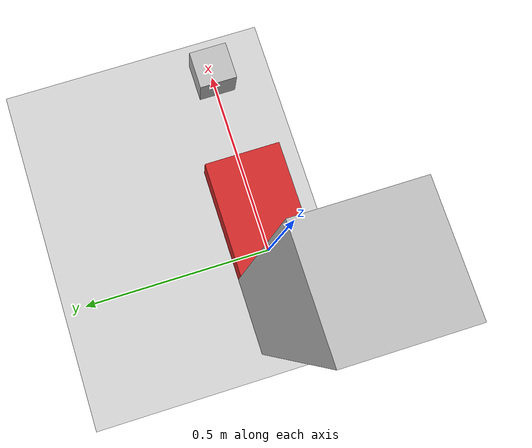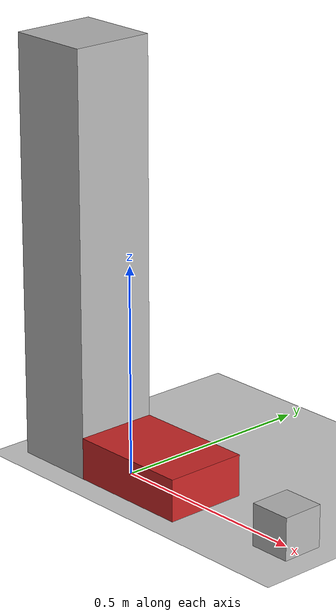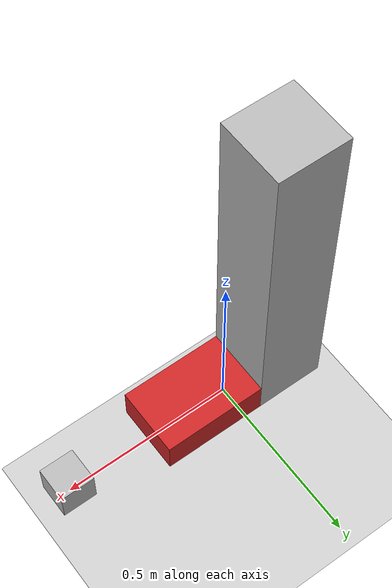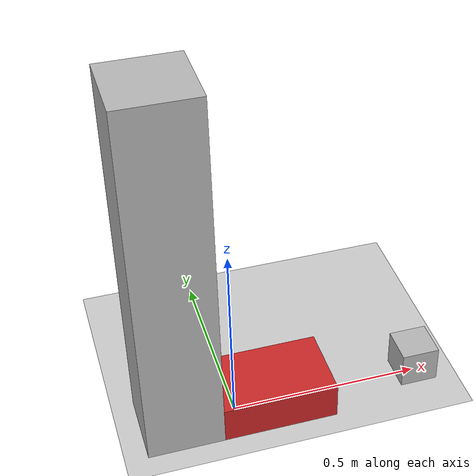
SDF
<?xml version="1.0"?>
<sdf version="1.4">
    <world name="default">

    <!-- Ground Plane -->
    <include>
      <uri>model://ground_plane</uri>
    </include>

    <include>
      <uri>model://sun</uri>
    </include>

    <model name="simple_gripper">
        <link name="riser">
            <pose>-0.15 0.0 0.5 0 0 0</pose>
            <inertial>
                <pose>0 0 -0.5 0 0 0</pose>
                <inertia>
                    <ixx>0.01</ixx>
                    <ixy>0</ixy>
                    <ixz>0</ixz>
                    <iyy>0.01</iyy>
                    <iyz>0</iyz>
                    <izz>0.01</izz>
                </inertia>
                <mass>50.0</mass>
            </inertial>
            <collision name="collision">
                <geometry>
                    <box>
                        <size>0.2 0.2 1.0</size>
                    </box>
                </geometry>
            </collision>
            <visual name="visual">
                <geometry>
                    <box>
                        <size>0.2 0.2 1.0</size>
                    </box>
                </geometry>
            </visual>
        </link>
        <link name="gripper_link">
            <pose>0.1 0.0 0.05 0 0 0</pose>
            <inertial>
                <inertia>
                    <ixx>0.01</ixx>
                    <ixy>0</ixy>
                    <ixz>0</ixz>
                    <iyy>0.01</iyy>
                    <iyz>0</iyz>
                    <izz>0.01</izz>
                </inertia>
                <mass>0.5</mass>
            </inertial>
            <collision name="collision">
                <geometry>
                    <box>
                        <size>0.3 0.2 0.1</size>
                    </box>
                </geometry>
            </collision>
            <visual name="visual">
                <geometry>
                    <box>
                        <size>0.3 0.2 0.1</size>
                    </box>
                </geometry>
                <material>
                	<script>
                    <uri>gazebo.material</uri>
                    <name>Gazebo/Red</name>
                  </script>
                </material>
            </visual>
        </link>
        <joint name="palm_riser" type="prismatic">
            <child>gripper_link</child>
            <parent>riser</parent>
            <axis>
                <limit>
                    <lower>0</lower>
                    <upper>0.9</upper>
                </limit>
                <xyz>0 0 1</xyz>
            </axis>
        </joint>
	      <plugin name="ros_gripper" filename="libmagnetic_gripper_plugin.so">
          <robot_name>test_gripper</robot_name>
          <gripper_link_name>gripper_link</gripper_link_name>
        </plugin>
    </model>

    <model name='obj_box'>
      <pose>0.5 0 0.05 0 0 0</pose>
      <link name='1.box'>
        <inertial>
          <mass>0.5</mass>
          <inertia>
            <ixx>0.01</ixx>
            <ixy>0</ixy>
            <ixz>0</ixz>
            <iyy>0.01</iyy>
            <iyz>0</iyz>
            <izz>0.01</izz>
          </inertia>
        </inertial>
        <collision name='collision'>
          <geometry>
            <box>
              <size>0.1 0.1 0.1</size>
            </box>
          </geometry>
        </collision>
        <visual name='visual'>
          <geometry>
            <box>
              <size>0.1 0.1 0.1</size>
            </box>
          </geometry>
        </visual>
      </link>
    </model>
  </world>
</sdf>
